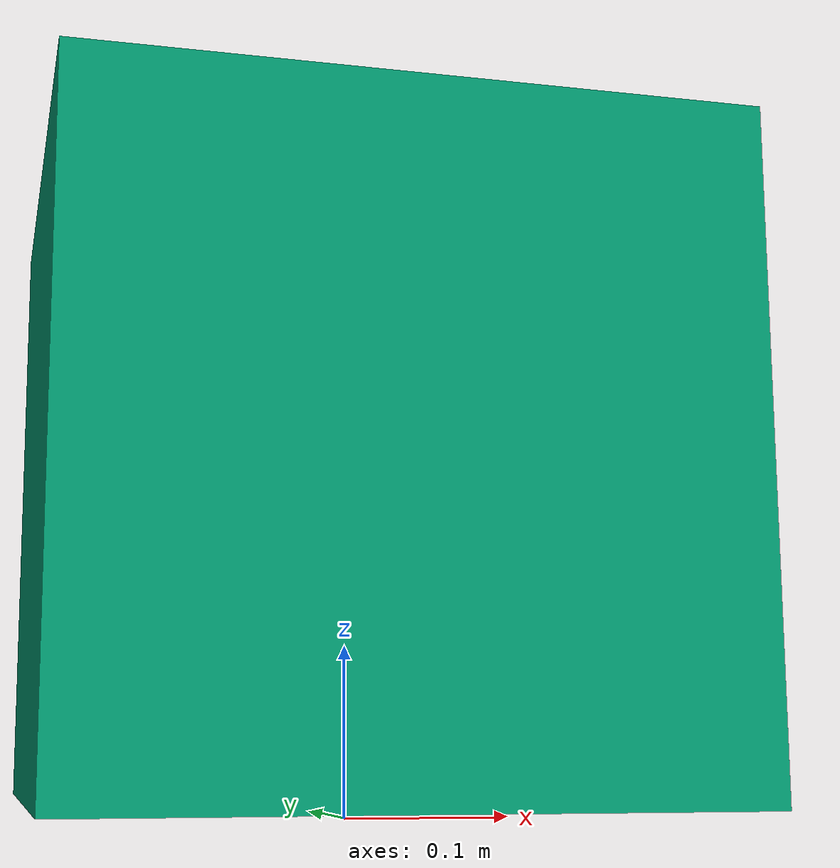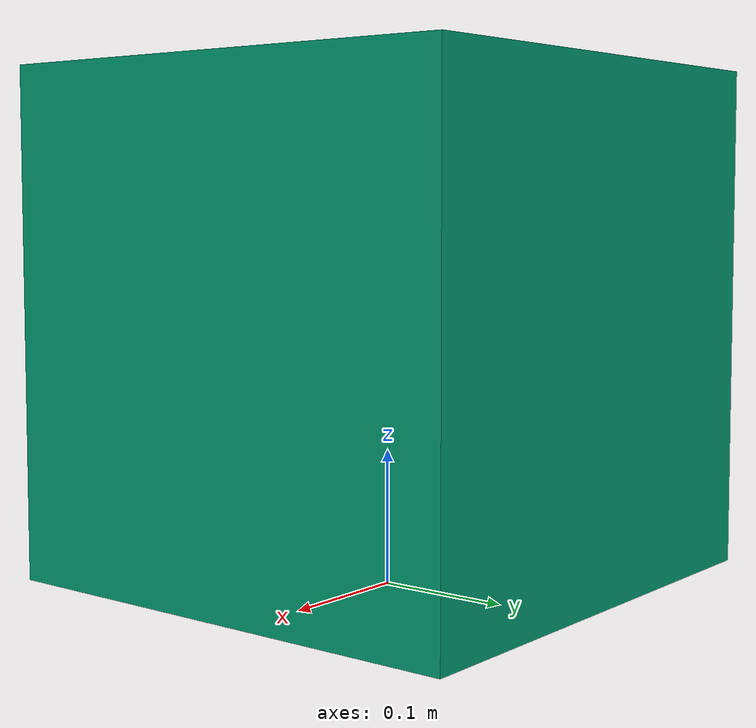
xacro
<?xml version="1.0" ?>
<robot name="body"
    xmlns:xacro="http://ros.org/wiki/xacro">
    <link name="base_footprint" />
    <link name="base_link" />
    <joint name="base_joint" type="fixed">
        <parent link="base_footprint" />
        <child link="base_link" />
        <origin xyz="0 0 0.01" rpy="0 0 0" />
    </joint>

    <xacro:property name="b_m" value="5.58"/>
    <xacro:property name="b_m2" value="${b_m/12}"/>
    <!--for calculation of inertia-->
    <xacro:property name="b_w" value="0.37"/>
    <xacro:property name="b_h" value="0.37"/>
    <xacro:property name="b_d" value="0.37"/>

    <link name="body">
        <visual>
            <geometry>
                <box size="${b_d} ${b_w} ${b_h}" />
            </geometry>
        </visual>
        <collision>
            <geometry>
                <box size="${b_d*0.95} ${b_w*0.95} ${b_h*0.95}" />
            </geometry>
        </collision>
        <inertial>
            <origin xyz="0 0 0" rpy="0 0 0" />
            <mass value="${b_m}" />
            <inertia ixx="${b_m2*(b_h*b_h+b_w*b_w)}" ixy="0" ixz="0" iyx="0" iyy="${b_m2*(b_h*b_h+b_d*b_d)}" iyz="0" izx="0" izy="0" izz="${b_m2*(b_w*b_w+b_d*b_d)}" />
        </inertial>
    </link>

    <joint name="body_joint" type="fixed">
        <parent link="base_footprint" />
        <child link="body" />
        <origin xyz="0 0 0.195" rpy="0 0 0" />
    </joint>

</robot>
